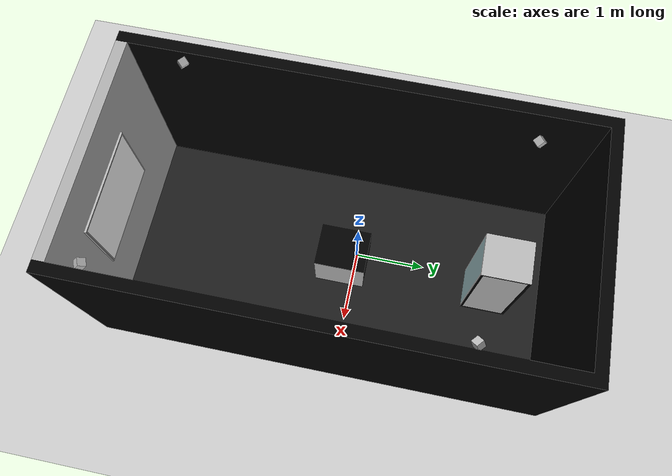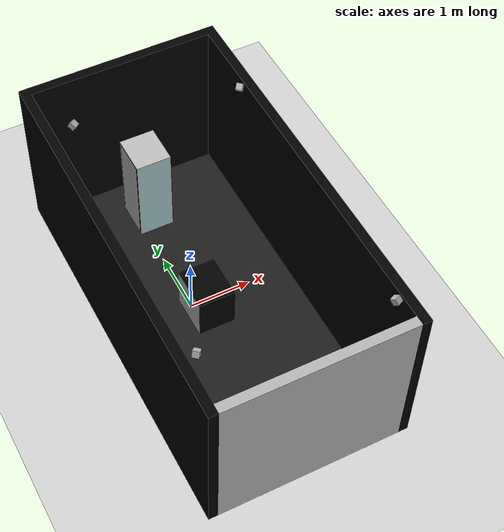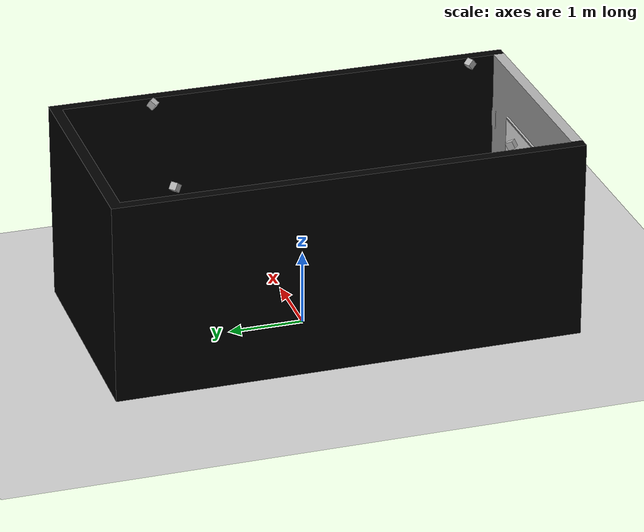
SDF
<sdf version="1.7">
 <world name="default">
  <model name="ground_plane">
   <static>1</static>
   <link name="link">
    <collision name="collision">
     <geometry><plane><normal>0 0 1</normal><size>100 100</size></plane></geometry>
     <surface><friction><ode><mu>100</mu><mu2>50</mu2></ode></friction></surface>
    </collision>
    <visual name="visual">
     <cast_shadows>0</cast_shadows>
     <geometry><plane><normal>0 0 1</normal><size>100 100</size></plane></geometry>
     <material>
      <script><uri>file://media/materials/scripts/gazebo.material</uri><name>Gazebo/Grey</name></script>
     </material>
    </visual>
   </link>
  </model>
  <gravity>0 0 -9.8</gravity>
  <magnetic_field>6e-06 2.3e-05 -4.2e-05</magnetic_field>
  <atmosphere type="adiabatic"/>
  <physics type="ode">
   <max_step_size>0.001</max_step_size>
   <real_time_factor>1</real_time_factor>
   <real_time_update_rate>1000</real_time_update_rate>
  </physics>
  <scene><ambient>0.4 0.4 0.4 1</ambient><background>0.7 0.7 0.7 1</background><shadows>1</shadows></scene>
  <spherical_coordinates>
   <surface_model>EARTH_WGS84</surface_model>
   <latitude_deg>0</latitude_deg>
   <longitude_deg>0</longitude_deg>
   <elevation>0</elevation>
   <heading_deg>0</heading_deg>
  </spherical_coordinates>
  <model name="Scene7">
   <link name="link_0">
    <inertial>
     <mass>1</mass>
     <inertia>
      <ixx>0.166667</ixx>
      <ixy>0</ixy>
      <ixz>0</ixz>
      <iyy>0.166667</iyy>
      <iyz>0</iyz>
      <izz>0.166667</izz>
     </inertia>
    </inertial>
    <pose>-1e-06 1e-06 0 0 -0 0</pose>
    <visual name="visual">
     <geometry>
      <mesh><uri>/home/dtu1990/ros2_ws/src/ros2_hri/world/Scene2.dae</uri><scale>1 1 1</scale></mesh>
     </geometry>
    </visual>
    <collision name="collision">
     <geometry>
      <mesh><uri>/home/dtu1990/ros2_ws/src/ros2_hri/world/Scene2.dae</uri><scale>1 1 1</scale></mesh>
     </geometry>
     <surface>
      <friction>
       <ode><mu>1</mu><mu2>1</mu2><fdir1>0 0 0</fdir1><slip1>0</slip1><slip2>0</slip2></ode>
       <torsional>
        <coefficient>1</coefficient>
        <patch_radius>0</patch_radius>
        <surface_radius>0</surface_radius>
        <use_patch_radius>1</use_patch_radius>
        <ode><slip>0</slip></ode>
       </torsional>
      </friction>
      <bounce><restitution_coefficient>0</restitution_coefficient><threshold>1e+06</threshold></bounce>
      <contact>
       <collide_without_contact>0</collide_without_contact>
       <collide_without_contact_bitmask>1</collide_without_contact_bitmask>
       <collide_bitmask>1</collide_bitmask>
       <ode>
        <soft_cfm>0</soft_cfm>
        <soft_erp>0.2</soft_erp>
        <kp>1e+13</kp>
        <kd>1</kd>
        <max_vel>0.01</max_vel>
        <min_depth>0</min_depth>
       </ode>
       <bullet>
        <split_impulse>1</split_impulse>
        <split_impulse_penetration_threshold>-0.01</split_impulse_penetration_threshold>
        <soft_cfm>0</soft_cfm>
        <soft_erp>0.2</soft_erp>
        <kp>1e+13</kp>
        <kd>1</kd>
       </bullet>
      </contact>
     </surface>
    </collision>
   </link>
   <static>1</static>
   <pose>1.67592 -3.2137 0 0 -0 0</pose>
  </model>
  <audio><device>default</device></audio>
  <model name="camera3">
   <link name="base_link">
    <inertial>
     <mass>1.1</mass>
     <inertia><ixx>0.011</ixx><ixy>0</ixy><ixz>0</ixz><iyy>0.011</iyy><iyz>0</iyz><izz>0.011</izz></inertia>
    </inertial>
    <collision name="base_link_collision"><geometry><box><size>0.1 0.1 0.1</size></box></geometry></collision>
    <collision name="base_link_fixed_joint_lump__camera3_link_collision_1">
     <geometry><box><size>0.1 0.1 0.1</size></box></geometry>
    </collision>
    <visual name="base_link_visual"><geometry><box><size>0.1 0.1 0.1</size></box></geometry></visual>
    <visual name="base_link_fixed_joint_lump__camera3_link_visual_1">
     <geometry><box><size>0.1 0.1 0.1</size></box></geometry>
    </visual>
    <sensor name="camera3_sensor" type="camera">
     <update_rate>30</update_rate>
     <camera name="camera3">
      <horizontal_fov>1.39626</horizontal_fov>
      <image><width>800</width><height>800</height><format>R8G8B8</format></image>
      <clip><near>0.02</near><far>300</far></clip>
      <noise><type>gaussian</type><mean>0</mean><stddev>0.007</stddev></noise>
     </camera>
     <plugin name="camera3_controller" filename="libgazebo_ros_camera.so">
      <alwaysOn>1</alwaysOn>
      <updateRate>0.0</updateRate>
      <cameraName>camera3</cameraName>
      <imageTopicName>camera3/image_raw</imageTopicName>
      <cameraInfoTopicName>camera3/camera_info</cameraInfoTopicName>
      <frameName>camera3_link</frameName>
     </plugin>
     <origin xyz="0 0 0" rpy="0 0 0"/>
    </sensor>
   </link>
   <static>1</static>
   <pose>-1.098 -2.45139 2.7 0 0.50001 0.85</pose>
  </model>
  <model name="camera1">
   <link name="base_link">
    <inertial>
     <mass>10.1</mass>
     <inertia><ixx>0.101</ixx><ixy>0</ixy><ixz>0</ixz><iyy>0.101</iyy><iyz>0</iyz><izz>0.101</izz></inertia>
    </inertial>
    <collision name="base_link_collision"><geometry><box><size>0.1 0.1 0.1</size></box></geometry></collision>
    <collision name="base_link_fixed_joint_lump__camera1_link_collision_1">
     <geometry><box><size>0.1 0.1 0.1</size></box></geometry>
    </collision>
    <visual name="base_link_visual"><geometry><box><size>0.1 0.1 0.1</size></box></geometry></visual>
    <visual name="base_link_fixed_joint_lump__camera1_link_visual_1">
     <geometry><box><size>0.1 0.1 0.1</size></box></geometry>
    </visual>
    <sensor name="camera1_sensor" type="camera">
     <update_rate>30</update_rate>
     <camera name="camera21">
      <horizontal_fov>1.39626</horizontal_fov>
      <image><width>800</width><height>800</height><format>R8G8B8</format></image>
      <clip><near>0.02</near><far>300</far></clip>
      <noise><type>gaussian</type><mean>0</mean><stddev>0.007</stddev></noise>
     </camera>
     <plugin name="camera1_controller" filename="libgazebo_ros_camera.so">
      <alwaysOn>1</alwaysOn>
      <updateRate>0.0</updateRate>
      <cameraName>camera1</cameraName>
      <imageTopicName>camera1/image_raw</imageTopicName>
      <cameraInfoTopicName>camera1/camera_info</cameraInfoTopicName>
      <frameName>camera1_link</frameName>
     </plugin>
     <origin xyz="0 0 0" rpy="0 0 0"/>
    </sensor>
   </link>
   <static>1</static>
   <pose>1.602 -2.85139 2.65 -1e-06 0.7 2</pose>
  </model>
  <model name="camera2">
   <link name="base_link">
    <inertial>
     <mass>10.1</mass>
     <inertia><ixx>0.101</ixx><ixy>0</ixy><ixz>0</ixz><iyy>0.101</iyy><iyz>0</iyz><izz>0.101</izz></inertia>
    </inertial>
    <collision name="base_link_collision"><geometry><box><size>0.1 0.1 0.1</size></box></geometry></collision>
    <collision name="base_link_fixed_joint_lump__camera2_link_collision_1">
     <geometry><box><size>0.1 0.1 0.1</size></box></geometry>
    </collision>
    <visual name="base_link_visual"><geometry><box><size>0.1 0.1 0.1</size></box></geometry></visual>
    <visual name="base_link_fixed_joint_lump__camera2_link_visual_1">
     <geometry><box><size>0.1 0.1 0.1</size></box></geometry>
    </visual>
    <sensor name="camera2_sensor" type="camera">
     <update_rate>30</update_rate>
     <camera name="camera2">
      <horizontal_fov>1.39626</horizontal_fov>
      <image><width>800</width><height>800</height><format>R8G8B8</format></image>
      <clip><near>0.02</near><far>300</far></clip>
      <noise><type>gaussian</type><mean>0</mean><stddev>0.007</stddev></noise>
     </camera>
     <plugin name="camera2_controller" filename="libgazebo_ros_camera.so">
      <alwaysOn>1</alwaysOn>
      <updateRate>0.0</updateRate>
      <cameraName>camera2</cameraName>
      <imageTopicName>camera2/image_raw</imageTopicName>
      <cameraInfoTopicName>camera2/camera_info</cameraInfoTopicName>
      <frameName>camera2_link</frameName>
     </plugin>
     <origin xyz="0 0 0" rpy="0 0 0"/>
    </sensor>
   </link>
   <static>1</static>
   <pose>1.602 1.54861 2.65 0 0.599 -2.3</pose>
  </model>
  <model name="camera4">
   <link name="base_link">
    <inertial>
     <mass>1.1</mass>
     <inertia><ixx>0.011</ixx><ixy>0</ixy><ixz>0</ixz><iyy>0.011</iyy><iyz>0</iyz><izz>0.011</izz></inertia>
    </inertial>
    <collision name="base_link_collision"><geometry><box><size>0.1 0.1 0.1</size></box></geometry></collision>
    <collision name="base_link_fixed_joint_lump__camera4_link_collision_1">
     <geometry><box><size>0.1 0.1 0.1</size></box></geometry>
    </collision>
    <visual name="base_link_visual"><geometry><box><size>0.1 0.1 0.1</size></box></geometry></visual>
    <visual name="base_link_fixed_joint_lump__camera4_link_visual_1">
     <geometry><box><size>0.1 0.1 0.1</size></box></geometry>
    </visual>
    <sensor name="camera4_sensor" type="camera">
     <update_rate>30</update_rate>
     <camera name="camera4">
      <horizontal_fov>1.39626</horizontal_fov>
      <image><width>800</width><height>800</height><format>R8G8B8</format></image>
      <clip><near>0.02</near><far>300</far></clip>
      <noise><type>gaussian</type><mean>0</mean><stddev>0.007</stddev></noise>
     </camera>
     <plugin name="camera4_controller" filename="libgazebo_ros_camera.so">
      <alwaysOn>1</alwaysOn>
      <updateRate>0.0</updateRate>
      <cameraName>camera4</cameraName>
      <imageTopicName>camera4/image_raw</imageTopicName>
      <cameraInfoTopicName>camera4/camera_info</cameraInfoTopicName>
      <frameName>camera4_link</frameName>
     </plugin>
     <origin xyz="0 0 0" rpy="0 0 0"/>
    </sensor>
   </link>
   <static>1</static>
   <pose>-0.918 1.94861 2.65 -1e-05 0.65 -0.9</pose>
  </model>
  <light name="user_point_light_0" type="point">
   <pose>0.146355 1.80923 1 0 -0 0</pose>
   <diffuse>0.5 0.5 0.5 1</diffuse>
   <specular>0.1 0.1 0.1 1</specular>
   <attenuation>
    <range>20</range>
    <constant>0.5</constant>
    <linear>0.01</linear>
    <quadratic>0.001</quadratic>
   </attenuation>
   <cast_shadows>0</cast_shadows>
   <direction>0 0 -1</direction>
   <spot><inner_angle>0</inner_angle><outer_angle>0</outer_angle><falloff>0</falloff></spot>
  </light>
  <light name="user_point_light_1" type="point">
   <pose>0.146044 -1.30898 1 0 -0 0</pose>
   <diffuse>0.5 0.5 0.5 1</diffuse>
   <specular>0.1 0.1 0.1 1</specular>
   <attenuation>
    <range>20</range>
    <constant>0.5</constant>
    <linear>0.01</linear>
    <quadratic>0.001</quadratic>
   </attenuation>
   <cast_shadows>0</cast_shadows>
   <direction>0 0 -1</direction>
   <spot><inner_angle>0</inner_angle><outer_angle>0</outer_angle><falloff>0</falloff></spot>
  </light>
  <light name="user_point_light_2" type="point">
   <pose>-0.438498 -1.58783 1 0 -0 0</pose>
   <diffuse>0.5 0.5 0.5 1</diffuse>
   <specular>0.1 0.1 0.1 1</specular>
   <attenuation>
    <range>20</range>
    <constant>0.5</constant>
    <linear>0.01</linear>
    <quadratic>0.001</quadratic>
   </attenuation>
   <cast_shadows>0</cast_shadows>
   <direction>0 0 -1</direction>
  </light>
  <light name="user_point_light_3" type="point">
   <pose>-0.393222 -1.40293 1 0 -0 0</pose>
   <diffuse>0.5 0.5 0.5 1</diffuse>
   <specular>0.1 0.1 0.1 1</specular>
   <attenuation>
    <range>20</range>
    <constant>0.5</constant>
    <linear>0.01</linear>
    <quadratic>0.001</quadratic>
   </attenuation>
   <cast_shadows>0</cast_shadows>
   <direction>0 0 -1</direction>
  </light>
 </world>
</sdf>
